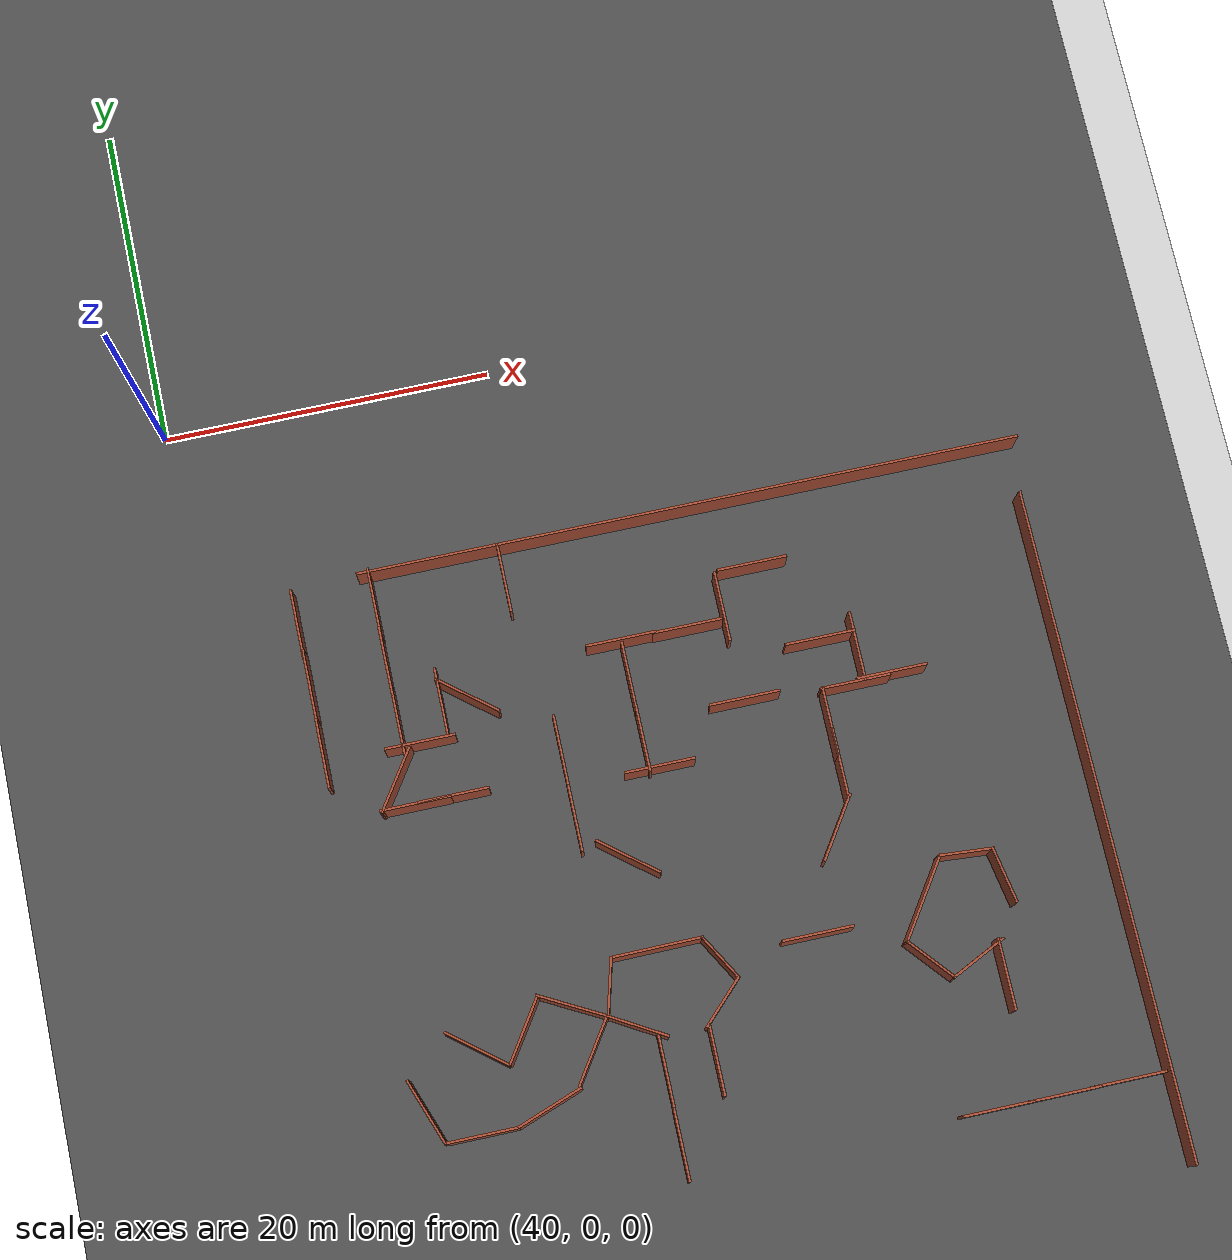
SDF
<sdf version="1.6">
 <world name="default">
  <model name="ground_plane">
   <static>1</static>
   <link name="link">
    <collision name="collision">
     <geometry><plane><normal>0 0 1</normal><size>200 200</size></plane></geometry>
     <surface><friction><ode><mu>100</mu><mu2>50</mu2></ode></friction></surface>
    </collision>
    <visual name="visual">
     <cast_shadows>0</cast_shadows>
     <geometry><plane><normal>0 0 1</normal><size>200 200</size></plane></geometry>
     <material>
      <script><uri>file://media/materials/scripts/gazebo.material</uri><name>Gazebo/Grey</name></script>
     </material>
    </visual>
   </link>
  </model>
  <model name="asphalt_plane">
   <static>1</static>
   <link name="link">
    <collision name="collision"><geometry><box><size>200 200 0.1</size></box></geometry></collision>
    <visual name="visual">
     <cast_shadows>0</cast_shadows>
     <geometry><box><size>200 200 0.1</size></box></geometry>
     <material>
      <script>
       <uri>model://asphalt_plane/materials/scripts</uri>
       <uri>model://asphalt_plane/materials/textures</uri>
       <name>vrc/asphalt</name>
      </script>
     </material>
    </visual>
   </link>
  </model>
  <model name="room1">
   <pose>62.9469 -39.1804 0 0 -0 0</pose>
   <link name="Wall_11">
    <collision name="Wall_11_Collision">
     <geometry><box><size>3.25 0.15 2.5</size></box></geometry>
     <pose>0 0 1.25 0 -0 0</pose>
    </collision>
    <visual name="Wall_11_Visual">
     <pose>0 0 1.25 0 -0 0</pose>
     <geometry><box><size>3.25 0.15 2.5</size></box></geometry>
     <material>
      <script><uri>file://media/materials/scripts/gazebo.material</uri><name>Gazebo/Bricks</name></script>
      <ambient>1 1 1 1</ambient>
     </material>
    </visual>
    <pose>3.12132 1.19483 0 0 0 -1.0472</pose>
   </link>
   <link name="Wall_12">
    <collision name="Wall_12_Collision">
     <geometry><box><size>3.5 0.15 2.5</size></box></geometry>
     <pose>0 0 1.25 0 -0 0</pose>
    </collision>
    <visual name="Wall_12_Visual">
     <pose>0 0 1.25 0 -0 0</pose>
     <geometry><box><size>3.5 0.15 2.5</size></box></geometry>
     <material>
      <script><uri>file://media/materials/scripts/gazebo.material</uri><name>Gazebo/Bricks</name></script>
      <ambient>1 1 1 1</ambient>
     </material>
    </visual>
    <pose>2.71192 -1.33192 0 0 0 -2.35619</pose>
   </link>
   <link name="Wall_7">
    <collision name="Wall_7_Collision">
     <geometry><box><size>5.52935 0.15 2.5</size></box></geometry>
     <pose>0 0 1.25 0 -0 0</pose>
    </collision>
    <visual name="Wall_7_Visual">
     <pose>0 0 1.25 0 -0 0</pose>
     <geometry><box><size>5.52935 0.15 2.5</size></box></geometry>
     <material>
      <script><uri>file://media/materials/scripts/gazebo.material</uri><name>Gazebo/Bricks</name></script>
      <ambient>1 1 1 1</ambient>
     </material>
    </visual>
    <pose>-0.343285 2.51793 0 0 0 -3.13444</pose>
   </link>
   <link name="Wall_8">
    <collision name="Wall_8_Collision">
     <geometry><box><size>3.5 0.15 2.5</size></box></geometry>
     <pose>0 0 1.25 0 -0 0</pose>
    </collision>
    <visual name="Wall_8_Visual">
     <pose>0 0 1.25 0 -0 0</pose>
     <geometry><box><size>3.5 0.15 2.5</size></box></geometry>
     <material>
      <script><uri>file://media/materials/scripts/gazebo.material</uri><name>Gazebo/Bricks</name></script>
      <ambient>1 1 1 1</ambient>
     </material>
    </visual>
    <pose>-3.46641 0.880761 0 0 0 -1.8326</pose>
   </link>
   <link name="Wall_9">
    <collision name="Wall_9_Collision">
     <geometry><box><size>3.75 0.15 2.5</size></box></geometry>
     <pose>0 0 1.25 0 -0 0</pose>
    </collision>
    <visual name="Wall_9_Visual">
     <pose>0 0 1.25 0 -0 0</pose>
     <geometry><box><size>3.75 0.15 2.5</size></box></geometry>
     <material>
      <script><uri>file://media/materials/scripts/gazebo.material</uri><name>Gazebo/Bricks</name></script>
      <ambient>1 1 1 1</ambient>
     </material>
    </visual>
    <pose>-2.34109 -1.63716 0 0 0 -0.523599</pose>
   </link>
   <static>1</static>
  </model>
  <model name="worlds_2">
   <pose>57.0992 -38.867 0 0 -0 1.08023</pose>
   <link name="Wall_0">
    <collision name="Wall_0_Collision">
     <geometry><box><size>4.25 0.15 2.5</size></box></geometry>
     <pose>0 0 1.25 0 -0 0</pose>
    </collision>
    <visual name="Wall_0_Visual">
     <pose>0 0 1.25 0 -0 0</pose>
     <geometry><box><size>4.25 0.15 2.5</size></box></geometry>
     <material>
      <script><uri>file://media/materials/scripts/gazebo.material</uri><name>Gazebo/Bricks</name></script>
      <ambient>1 1 1 1</ambient>
     </material>
    </visual>
    <pose>0 -0 0 0 -0 1.5708</pose>
   </link>
   <static>1</static>
  </model>
  <model name="worlds_1_clone">
   <pose>61.6345 -43.6539 0 0 -0 0</pose>
   <link name="Wall_0">
    <collision name="Wall_0_Collision">
     <geometry><box><size>4.25 0.15 2.5</size></box></geometry>
     <pose>0 0 1.25 0 -0 0</pose>
    </collision>
    <visual name="Wall_0_Visual">
     <pose>0 0 1.25 0 -0 0</pose>
     <geometry><box><size>4.25 0.15 2.5</size></box></geometry>
     <material>
      <script><uri>file://media/materials/scripts/gazebo.material</uri><name>Gazebo/Bricks</name></script>
      <ambient>1 1 1 1</ambient>
     </material>
    </visual>
    <pose>0 -0 0 0 -0 1.5708</pose>
   </link>
   <static>1</static>
  </model>
  <model name="worlds_1_clone_0">
   <pose>61.6134 -47.8914 0 0 -0 0</pose>
   <link name="Wall_0">
    <collision name="Wall_0_Collision">
     <geometry><box><size>4.25 0.15 2.5</size></box></geometry>
     <pose>0 0 1.25 0 -0 0</pose>
    </collision>
    <visual name="Wall_0_Visual">
     <pose>0 0 1.25 0 -0 0</pose>
     <geometry><box><size>4.25 0.15 2.5</size></box></geometry>
     <material>
      <script><uri>file://media/materials/scripts/gazebo.material</uri><name>Gazebo/Bricks</name></script>
      <ambient>1 1 1 1</ambient>
     </material>
    </visual>
    <pose>0 -0 0 0 -0 1.5708</pose>
   </link>
   <static>1</static>
  </model>
  <model name="worlds_1_clone_0_clone_clone_0">
   <pose>71.8838 -37.8494 0 0 0 -1.57092</pose>
   <link name="Wall_0">
    <collision name="Wall_0_Collision">
     <geometry><box><size>4.25 0.15 2.5</size></box></geometry>
     <pose>0 0 1.25 0 -0 0</pose>
    </collision>
    <visual name="Wall_0_Visual">
     <pose>0 0 1.25 0 -0 0</pose>
     <geometry><box><size>4.25 0.15 2.5</size></box></geometry>
     <material>
      <script><uri>file://media/materials/scripts/gazebo.material</uri><name>Gazebo/Bricks</name></script>
      <ambient>1 1 1 1</ambient>
     </material>
    </visual>
    <pose>0 -0 0 0 -0 1.5708</pose>
   </link>
   <static>1</static>
  </model>
  <model name="worlds_1_clone_1_clone_7_clone_clone">
   <pose>54.1633 -39.674 0 0 0 -0.589381</pose>
   <link name="Wall_0">
    <collision name="Wall_0_Collision">
     <geometry><box><size>4.25 0.15 2.5</size></box></geometry>
     <pose>0 0 1.25 0 -0 0</pose>
    </collision>
    <visual name="Wall_0_Visual">
     <pose>0 0 1.25 0 -0 0</pose>
     <geometry><box><size>4.25 0.15 2.5</size></box></geometry>
     <material>
      <script><uri>file://media/materials/scripts/gazebo.material</uri><name>Gazebo/Bricks</name></script>
      <ambient>1 1 1 1</ambient>
     </material>
    </visual>
    <pose>0 -0 0 0 -0 1.5708</pose>
   </link>
   <static>1</static>
  </model>
  <model name="worlds_1_clone_1_clone_7_clone_clone_clone">
   <pose>57.7678 -41.7145 0 0 0 -0.589381</pose>
   <link name="Wall_0">
    <collision name="Wall_0_Collision">
     <geometry><box><size>4.25 0.15 2.5</size></box></geometry>
     <pose>0 0 1.25 0 -0 0</pose>
    </collision>
    <visual name="Wall_0_Visual">
     <pose>0 0 1.25 0 -0 0</pose>
     <geometry><box><size>4.25 0.15 2.5</size></box></geometry>
     <material>
      <script><uri>file://media/materials/scripts/gazebo.material</uri><name>Gazebo/Bricks</name></script>
      <ambient>1 1 1 1</ambient>
     </material>
    </visual>
    <pose>0 -0 0 0 -0 1.5708</pose>
   </link>
   <static>1</static>
  </model>
  <model name="worlds_1_clone_0_clone_clone_0_clone_clone_0_clone_clone">
   <pose>47.8022 -43.0147 0 0 0 -2.78777</pose>
   <link name="Wall_0">
    <collision name="Wall_0_Collision">
     <geometry><box><size>4.25 0.15 2.5</size></box></geometry>
     <pose>0 0 1.25 0 -0 0</pose>
    </collision>
    <visual name="Wall_0_Visual">
     <pose>0 0 1.25 0 -0 0</pose>
     <geometry><box><size>4.25 0.15 2.5</size></box></geometry>
     <material>
      <script><uri>file://media/materials/scripts/gazebo.material</uri><name>Gazebo/Bricks</name></script>
      <ambient>1 1 1 1</ambient>
     </material>
    </visual>
    <pose>0 -0 0 0 -0 1.5708</pose>
   </link>
   <static>1</static>
  </model>
  <model name="worlds_1_clone_0_clone_clone_0_clone_clone_0_clone_clone_0">
   <pose>54.7413 -44.255 0 0 0 -1.22347</pose>
   <link name="Wall_0">
    <collision name="Wall_0_Collision">
     <geometry><box><size>4.25 0.15 2.5</size></box></geometry>
     <pose>0 0 1.25 0 -0 0</pose>
    </collision>
    <visual name="Wall_0_Visual">
     <pose>0 0 1.25 0 -0 0</pose>
     <geometry><box><size>4.25 0.15 2.5</size></box></geometry>
     <material>
      <script><uri>file://media/materials/scripts/gazebo.material</uri><name>Gazebo/Bricks</name></script>
      <ambient>1 1 1 1</ambient>
     </material>
    </visual>
    <pose>0 -0 0 0 -0 1.5708</pose>
   </link>
   <static>1</static>
  </model>
  <model name="worlds_1_clone_0_clone_clone_0_clone_clone_0_clone_clone_clone">
   <pose>50.6997 -44.9664 0 0 0 -1.57092</pose>
   <link name="Wall_0">
    <collision name="Wall_0_Collision">
     <geometry><box><size>4.25 0.15 2.5</size></box></geometry>
     <pose>0 0 1.25 0 -0 0</pose>
    </collision>
    <visual name="Wall_0_Visual">
     <pose>0 0 1.25 0 -0 0</pose>
     <geometry><box><size>4.25 0.15 2.5</size></box></geometry>
     <material>
      <script><uri>file://media/materials/scripts/gazebo.material</uri><name>Gazebo/Bricks</name></script>
      <ambient>1 1 1 1</ambient>
     </material>
    </visual>
    <pose>0 -0 0 0 -0 1.5708</pose>
   </link>
   <static>1</static>
  </model>
  <model name="worlds_1_clone_1_clone_7_clone_clone_0">
   <pose>51.3459 -40.1271 0 0 -0 0.90029</pose>
   <link name="Wall_0">
    <collision name="Wall_0_Collision">
     <geometry><box><size>4.25 0.15 2.5</size></box></geometry>
     <pose>0 0 1.25 0 -0 0</pose>
    </collision>
    <visual name="Wall_0_Visual">
     <pose>0 0 1.25 0 -0 0</pose>
     <geometry><box><size>4.25 0.15 2.5</size></box></geometry>
     <material>
      <script><uri>file://media/materials/scripts/gazebo.material</uri><name>Gazebo/Bricks</name></script>
      <ambient>1 1 1 1</ambient>
     </material>
    </visual>
    <pose>0 -0 0 0 -0 1.5708</pose>
   </link>
   <static>1</static>
  </model>
  <model name="worlds_1_clone_clone">
   <pose>64.6066 -43.6549 0 0 -0 0</pose>
   <link name="Wall_0">
    <collision name="Wall_0_Collision">
     <geometry><box><size>4.25 0.15 2.5</size></box></geometry>
     <pose>0 0 1.25 0 -0 0</pose>
    </collision>
    <visual name="Wall_0_Visual">
     <pose>0 0 1.25 0 -0 0</pose>
     <geometry><box><size>4.25 0.15 2.5</size></box></geometry>
     <material>
      <script><uri>file://media/materials/scripts/gazebo.material</uri><name>Gazebo/Bricks</name></script>
      <ambient>1 1 1 1</ambient>
     </material>
    </visual>
    <pose>0 -0 0 0 -0 1.5708</pose>
   </link>
   <static>1</static>
  </model>
  <model name="longwall_clone_clone">
   <pose>70.133 -11.2921 0 0 -0 0</pose>
   <link name="Wall_0">
    <collision name="Wall_0_Collision">
     <geometry><box><size>40.5 0.15 2.5</size></box></geometry>
     <pose>0 0 1.25 0 -0 0</pose>
    </collision>
    <visual name="Wall_0_Visual">
     <pose>0 0 1.25 0 -0 0</pose>
     <geometry><box><size>40.5 0.15 2.5</size></box></geometry>
     <material>
      <script><uri>file://media/materials/scripts/gazebo.material</uri><name>Gazebo/Bricks</name></script>
      <ambient>1 1 1 1</ambient>
     </material>
    </visual>
    <pose>1e-06 0 0 0 -0 0</pose>
   </link>
   <static>1</static>
  </model>
  <model name="longwall_clone_clone_3_clone_2">
   <pose>89.7563 -34.9133 0 0 0 -1.56602</pose>
   <link name="Wall_0">
    <collision name="Wall_0_Collision">
     <geometry><box><size>40.5 0.15 2.5</size></box></geometry>
     <pose>0 0 1.25 0 -0 0</pose>
    </collision>
    <visual name="Wall_0_Visual">
     <pose>0 0 1.25 0 -0 0</pose>
     <geometry><box><size>40.5 0.15 2.5</size></box></geometry>
     <material>
      <script><uri>file://media/materials/scripts/gazebo.material</uri><name>Gazebo/Bricks</name></script>
      <ambient>1 1 1 1</ambient>
     </material>
    </visual>
    <pose>1e-06 0 0 0 -0 0</pose>
   </link>
   <static>1</static>
  </model>
  <model name="worlds_1_clone_0_clone_clone_0_clone_clone_clone_1">
   <pose>79.6674 -49.7138 0 0 0 -1.57092</pose>
   <link name="Wall_0">
    <collision name="Wall_0_Collision">
     <geometry><box><size>4.25 0.15 2.5</size></box></geometry>
     <pose>0 0 1.25 0 -0 0</pose>
    </collision>
    <visual name="Wall_0_Visual">
     <pose>0 0 1.25 0 -0 0</pose>
     <geometry><box><size>4.25 0.15 2.5</size></box></geometry>
     <material>
      <script><uri>file://media/materials/scripts/gazebo.material</uri><name>Gazebo/Bricks</name></script>
      <ambient>1 1 1 1</ambient>
     </material>
    </visual>
    <pose>0 -0 0 0 -0 1.5708</pose>
   </link>
   <static>1</static>
  </model>
  <model name="worlds_1_clone_0_clone_clone_0_clone_clone_clone_2">
   <pose>83.5636 -49.7075 0 0 0 -1.57092</pose>
   <link name="Wall_0">
    <collision name="Wall_0_Collision">
     <geometry><box><size>4.25 0.15 2.5</size></box></geometry>
     <pose>0 0 1.25 0 -0 0</pose>
    </collision>
    <visual name="Wall_0_Visual">
     <pose>0 0 1.25 0 -0 0</pose>
     <geometry><box><size>4.25 0.15 2.5</size></box></geometry>
     <material>
      <script><uri>file://media/materials/scripts/gazebo.material</uri><name>Gazebo/Bricks</name></script>
      <ambient>1 1 1 1</ambient>
     </material>
    </visual>
    <pose>0 -0 0 0 -0 1.5708</pose>
   </link>
   <static>1</static>
  </model>
  <model name="worlds_1_clone_0_clone_clone_0_clone_clone_clone_3">
   <pose>87.4411 -49.6799 0 0 0 -1.57092</pose>
   <link name="Wall_0">
    <collision name="Wall_0_Collision">
     <geometry><box><size>4.25 0.15 2.5</size></box></geometry>
     <pose>0 0 1.25 0 -0 0</pose>
    </collision>
    <visual name="Wall_0_Visual">
     <pose>0 0 1.25 0 -0 0</pose>
     <geometry><box><size>4.25 0.15 2.5</size></box></geometry>
     <material>
      <script><uri>file://media/materials/scripts/gazebo.material</uri><name>Gazebo/Bricks</name></script>
      <ambient>1 1 1 1</ambient>
     </material>
    </visual>
    <pose>0 -0 0 0 -0 1.5708</pose>
   </link>
   <static>1</static>
  </model>
  <model name="worlds_1_clone_1_clone_clone_0_clone_3">
   <pose>45.9096 -21.4531 0 0 -0 0</pose>
   <link name="Wall_0">
    <collision name="Wall_0_Collision">
     <geometry><box><size>4.25 0.15 2.5</size></box></geometry>
     <pose>0 0 1.25 0 -0 0</pose>
    </collision>
    <visual name="Wall_0_Visual">
     <pose>0 0 1.25 0 -0 0</pose>
     <geometry><box><size>4.25 0.15 2.5</size></box></geometry>
     <material>
      <script><uri>file://media/materials/scripts/gazebo.material</uri><name>Gazebo/Bricks</name></script>
      <ambient>1 1 1 1</ambient>
     </material>
    </visual>
    <pose>0 -0 0 0 -0 1.5708</pose>
   </link>
   <static>1</static>
  </model>
  <model name="worlds_1_clone_1_clone_clone_0_clone_5">
   <pose>45.9289 -17.2509 0 0 -0 0</pose>
   <link name="Wall_0">
    <collision name="Wall_0_Collision">
     <geometry><box><size>4.25 0.15 2.5</size></box></geometry>
     <pose>0 0 1.25 0 -0 0</pose>
    </collision>
    <visual name="Wall_0_Visual">
     <pose>0 0 1.25 0 -0 0</pose>
     <geometry><box><size>4.25 0.15 2.5</size></box></geometry>
     <material>
      <script><uri>file://media/materials/scripts/gazebo.material</uri><name>Gazebo/Bricks</name></script>
      <ambient>1 1 1 1</ambient>
     </material>
    </visual>
    <pose>0 -0 0 0 -0 1.5708</pose>
   </link>
   <static>1</static>
  </model>
  <model name="worlds_1_clone_1_clone_clone_0_clone_6">
   <pose>45.8934 -13.5337 0 0 -0 0</pose>
   <link name="Wall_0">
    <collision name="Wall_0_Collision">
     <geometry><box><size>4.25 0.15 2.5</size></box></geometry>
     <pose>0 0 1.25 0 -0 0</pose>
    </collision>
    <visual name="Wall_0_Visual">
     <pose>0 0 1.25 0 -0 0</pose>
     <geometry><box><size>4.25 0.15 2.5</size></box></geometry>
     <material>
      <script><uri>file://media/materials/scripts/gazebo.material</uri><name>Gazebo/Bricks</name></script>
      <ambient>1 1 1 1</ambient>
     </material>
    </visual>
    <pose>0 -0 0 0 -0 1.5708</pose>
   </link>
   <static>1</static>
  </model>
  <model name="room1_clone_2">
   <pose>80.5801 -38.3089 0 0 -0 0.969844</pose>
   <link name="Wall_11">
    <collision name="Wall_11_Collision">
     <geometry><box><size>3.25 0.15 2.5</size></box></geometry>
     <pose>0 0 1.25 0 -0 0</pose>
    </collision>
    <visual name="Wall_11_Visual">
     <pose>0 0 1.25 0 -0 0</pose>
     <geometry><box><size>3.25 0.15 2.5</size></box></geometry>
     <material>
      <script><uri>file://media/materials/scripts/gazebo.material</uri><name>Gazebo/Bricks</name></script>
      <ambient>1 1 1 1</ambient>
     </material>
    </visual>
    <pose>3.12132 1.19483 0 0 0 -1.0472</pose>
   </link>
   <link name="Wall_12">
    <collision name="Wall_12_Collision">
     <geometry><box><size>3.5 0.15 2.5</size></box></geometry>
     <pose>0 0 1.25 0 -0 0</pose>
    </collision>
    <visual name="Wall_12_Visual">
     <pose>0 0 1.25 0 -0 0</pose>
     <geometry><box><size>3.5 0.15 2.5</size></box></geometry>
     <material>
      <script><uri>file://media/materials/scripts/gazebo.material</uri><name>Gazebo/Bricks</name></script>
      <ambient>1 1 1 1</ambient>
     </material>
    </visual>
    <pose>2.71192 -1.33192 0 0 0 -2.35619</pose>
   </link>
   <link name="Wall_7">
    <collision name="Wall_7_Collision">
     <geometry><box><size>5.52935 0.15 2.5</size></box></geometry>
     <pose>0 0 1.25 0 -0 0</pose>
    </collision>
    <visual name="Wall_7_Visual">
     <pose>0 0 1.25 0 -0 0</pose>
     <geometry><box><size>5.52935 0.15 2.5</size></box></geometry>
     <material>
      <script><uri>file://media/materials/scripts/gazebo.material</uri><name>Gazebo/Bricks</name></script>
      <ambient>1 1 1 1</ambient>
     </material>
    </visual>
    <pose>-0.343285 2.51793 0 0 0 -3.13444</pose>
   </link>
   <link name="Wall_8">
    <collision name="Wall_8_Collision">
     <geometry><box><size>3.5 0.15 2.5</size></box></geometry>
     <pose>0 0 1.25 0 -0 0</pose>
    </collision>
    <visual name="Wall_8_Visual">
     <pose>0 0 1.25 0 -0 0</pose>
     <geometry><box><size>3.5 0.15 2.5</size></box></geometry>
     <material>
      <script><uri>file://media/materials/scripts/gazebo.material</uri><name>Gazebo/Bricks</name></script>
      <ambient>1 1 1 1</ambient>
     </material>
    </visual>
    <pose>-3.46641 0.880761 0 0 0 -1.8326</pose>
   </link>
   <link name="Wall_9">
    <collision name="Wall_9_Collision">
     <geometry><box><size>3.75 0.15 2.5</size></box></geometry>
     <pose>0 0 1.25 0 -0 0</pose>
    </collision>
    <visual name="Wall_9_Visual">
     <pose>0 0 1.25 0 -0 0</pose>
     <geometry><box><size>3.75 0.15 2.5</size></box></geometry>
     <material>
      <script><uri>file://media/materials/scripts/gazebo.material</uri><name>Gazebo/Bricks</name></script>
      <ambient>1 1 1 1</ambient>
     </material>
    </visual>
    <pose>-2.34109 -1.63716 0 0 0 -0.523599</pose>
   </link>
   <static>1</static>
  </model>
  <model name="worlds_1_clone_clone_clone">
   <pose>81.9554 -42.414 0 0 -0 0</pose>
   <link name="Wall_0">
    <collision name="Wall_0_Collision">
     <geometry><box><size>4.25 0.15 2.5</size></box></geometry>
     <pose>0 0 1.25 0 -0 0</pose>
    </collision>
    <visual name="Wall_0_Visual">
     <pose>0 0 1.25 0 -0 0</pose>
     <geometry><box><size>4.25 0.15 2.5</size></box></geometry>
     <material>
      <script><uri>file://media/materials/scripts/gazebo.material</uri><name>Gazebo/Bricks</name></script>
      <ambient>1 1 1 1</ambient>
     </material>
    </visual>
    <pose>0 -0 0 0 -0 1.5708</pose>
   </link>
   <static>1</static>
  </model>
  <model name="worlds_1_clone_clone_0">
   <pose>59.5845 -28.2096 0 0 -0 0</pose>
   <link name="Wall_0">
    <collision name="Wall_0_Collision">
     <geometry><box><size>4.25 0.15 2.5</size></box></geometry>
     <pose>0 0 1.25 0 -0 0</pose>
    </collision>
    <visual name="Wall_0_Visual">
     <pose>0 0 1.25 0 -0 0</pose>
     <geometry><box><size>4.25 0.15 2.5</size></box></geometry>
     <material>
      <script><uri>file://media/materials/scripts/gazebo.material</uri><name>Gazebo/Bricks</name></script>
      <ambient>1 1 1 1</ambient>
     </material>
    </visual>
    <pose>0 -0 0 0 -0 1.5708</pose>
   </link>
   <static>1</static>
  </model>
  <model name="worlds_1_clone_clone_1">
   <pose>75.4189 -28.4288 0 0 -0 0</pose>
   <link name="Wall_0">
    <collision name="Wall_0_Collision">
     <geometry><box><size>4.25 0.15 2.5</size></box></geometry>
     <pose>0 0 1.25 0 -0 0</pose>
    </collision>
    <visual name="Wall_0_Visual">
     <pose>0 0 1.25 0 -0 0</pose>
     <geometry><box><size>4.25 0.15 2.5</size></box></geometry>
     <material>
      <script><uri>file://media/materials/scripts/gazebo.material</uri><name>Gazebo/Bricks</name></script>
      <ambient>1 1 1 1</ambient>
     </material>
    </visual>
    <pose>0 -0 0 0 -0 1.5708</pose>
   </link>
   <static>1</static>
  </model>
  <model name="worlds_1_clone_clone_2">
   <pose>75.4102 -25.8949 0 0 -0 0</pose>
   <link name="Wall_0">
    <collision name="Wall_0_Collision">
     <geometry><box><size>4.25 0.15 2.5</size></box></geometry>
     <pose>0 0 1.25 0 -0 0</pose>
    </collision>
    <visual name="Wall_0_Visual">
     <pose>0 0 1.25 0 -0 0</pose>
     <geometry><box><size>4.25 0.15 2.5</size></box></geometry>
     <material>
      <script><uri>file://media/materials/scripts/gazebo.material</uri><name>Gazebo/Bricks</name></script>
      <ambient>1 1 1 1</ambient>
     </material>
    </visual>
    <pose>0 -0 0 0 -0 1.5708</pose>
   </link>
   <static>1</static>
  </model>
  <model name="worlds_1_clone_0_clone_clone_0_clone_0">
   <pose>77.3992 -23.8784 0 0 0 -1.57092</pose>
   <link name="Wall_0">
    <collision name="Wall_0_Collision">
     <geometry><box><size>4.25 0.15 2.5</size></box></geometry>
     <pose>0 0 1.25 0 -0 0</pose>
    </collision>
    <visual name="Wall_0_Visual">
     <pose>0 0 1.25 0 -0 0</pose>
     <geometry><box><size>4.25 0.15 2.5</size></box></geometry>
     <material>
      <script><uri>file://media/materials/scripts/gazebo.material</uri><name>Gazebo/Bricks</name></script>
      <ambient>1 1 1 1</ambient>
     </material>
    </visual>
    <pose>0 -0 0 0 -0 1.5708</pose>
   </link>
   <static>1</static>
  </model>
  <model name="worlds_1_clone_0_clone_clone_0_clone_1">
   <pose>79.6307 -23.7333 0 0 0 -1.57092</pose>
   <link name="Wall_0">
    <collision name="Wall_0_Collision">
     <geometry><box><size>4.25 0.15 2.5</size></box></geometry>
     <pose>0 0 1.25 0 -0 0</pose>
    </collision>
    <visual name="Wall_0_Visual">
     <pose>0 0 1.25 0 -0 0</pose>
     <geometry><box><size>4.25 0.15 2.5</size></box></geometry>
     <material>
      <script><uri>file://media/materials/scripts/gazebo.material</uri><name>Gazebo/Bricks</name></script>
      <ambient>1 1 1 1</ambient>
     </material>
    </visual>
    <pose>0 -0 0 0 -0 1.5708</pose>
   </link>
   <static>1</static>
  </model>
  <model name="worlds_1_clone_0_clone_clone_0_clone_2">
   <pose>65.0632 -26.3352 0 0 0 -1.57092</pose>
   <link name="Wall_0">
    <collision name="Wall_0_Collision">
     <geometry><box><size>4.25 0.15 2.5</size></box></geometry>
     <pose>0 0 1.25 0 -0 0</pose>
    </collision>
    <visual name="Wall_0_Visual">
     <pose>0 0 1.25 0 -0 0</pose>
     <geometry><box><size>4.25 0.15 2.5</size></box></geometry>
     <material>
      <script><uri>file://media/materials/scripts/gazebo.material</uri><name>Gazebo/Bricks</name></script>
      <ambient>1 1 1 1</ambient>
     </material>
    </visual>
    <pose>0 -0 0 0 -0 1.5708</pose>
   </link>
   <static>1</static>
  </model>
  <model name="worlds_1_clone_0_clone_clone_0_clone_3">
   <pose>70.8072 -23.4621 0 0 0 -1.57092</pose>
   <link name="Wall_0">
    <collision name="Wall_0_Collision">
     <geometry><box><size>4.25 0.15 2.5</size></box></geometry>
     <pose>0 0 1.25 0 -0 0</pose>
    </collision>
    <visual name="Wall_0_Visual">
     <pose>0 0 1.25 0 -0 0</pose>
     <geometry><box><size>4.25 0.15 2.5</size></box></geometry>
     <material>
      <script><uri>file://media/materials/scripts/gazebo.material</uri><name>Gazebo/Bricks</name></script>
      <ambient>1 1 1 1</ambient>
     </material>
    </visual>
    <pose>0 -0 0 0 -0 1.5708</pose>
   </link>
   <static>1</static>
  </model>
  <model name="worlds_1_clone_0_clone_clone_0_clone_4">
   <pose>64.4358 -18.4576 0 0 0 -1.57092</pose>
   <link name="Wall_0">
    <collision name="Wall_0_Collision">
     <geometry><box><size>4.25 0.15 2.5</size></box></geometry>
     <pose>0 0 1.25 0 -0 0</pose>
    </collision>
    <visual name="Wall_0_Visual">
     <pose>0 0 1.25 0 -0 0</pose>
     <geometry><box><size>4.25 0.15 2.5</size></box></geometry>
     <material>
      <script><uri>file://media/materials/scripts/gazebo.material</uri><name>Gazebo/Bricks</name></script>
      <ambient>1 1 1 1</ambient>
     </material>
    </visual>
    <pose>0 -0 0 0 -0 1.5708</pose>
   </link>
   <static>1</static>
  </model>
  <model name="worlds_1_clone_clone_0_clone">
   <pose>64.4379 -20.7736 0 0 -0 0</pose>
   <link name="Wall_0">
    <collision name="Wall_0_Collision">
     <geometry><box><size>4.25 0.15 2.5</size></box></geometry>
     <pose>0 0 1.25 0 -0 0</pose>
    </collision>
    <visual name="Wall_0_Visual">
     <pose>0 0 1.25 0 -0 0</pose>
     <geometry><box><size>4.25 0.15 2.5</size></box></geometry>
     <material>
      <script><uri>file://media/materials/scripts/gazebo.material</uri><name>Gazebo/Bricks</name></script>
      <ambient>1 1 1 1</ambient>
     </material>
    </visual>
    <pose>0 -0 0 0 -0 1.5708</pose>
   </link>
   <static>1</static>
  </model>
  <model name="worlds_1_clone_clone_0_clone_0">
   <pose>58.4374 -13.3357 0 0 -0 0</pose>
   <link name="Wall_0">
    <collision name="Wall_0_Collision">
     <geometry><box><size>4.25 0.15 2.5</size></box></geometry>
     <pose>0 0 1.25 0 -0 0</pose>
    </collision>
    <visual name="Wall_0_Visual">
     <pose>0 0 1.25 0 -0 0</pose>
     <geometry><box><size>4.25 0.15 2.5</size></box></geometry>
     <material>
      <script><uri>file://media/materials/scripts/gazebo.material</uri><name>Gazebo/Bricks</name></script>
      <ambient>1 1 1 1</ambient>
     </material>
    </visual>
    <pose>0 -0 0 0 -0 1.5708</pose>
   </link>
   <static>1</static>
  </model>
  <model name="worlds_1_clone_clone_0_clone_1">
   <pose>59.5905 -24.2097 0 0 -0 0</pose>
   <link name="Wall_0">
    <collision name="Wall_0_Collision">
     <geometry><box><size>4.25 0.15 2.5</size></box></geometry>
     <pose>0 0 1.25 0 -0 0</pose>
    </collision>
    <visual name="Wall_0_Visual">
     <pose>0 0 1.25 0 -0 0</pose>
     <geometry><box><size>4.25 0.15 2.5</size></box></geometry>
     <material>
      <script><uri>file://media/materials/scripts/gazebo.material</uri><name>Gazebo/Bricks</name></script>
      <ambient>1 1 1 1</ambient>
     </material>
    </visual>
    <pose>0 -0 0 0 -0 1.5708</pose>
   </link>
   <static>1</static>
  </model>
  <model name="worlds_1_clone_0_clone_clone_0_clone_2_clone">
   <pose>51.6197 -22 0 0 0 -1.57092</pose>
   <link name="Wall_0">
    <collision name="Wall_0_Collision">
     <geometry><box><size>4.25 0.15 2.5</size></box></geometry>
     <pose>0 0 1.25 0 -0 0</pose>
    </collision>
    <visual name="Wall_0_Visual">
     <pose>0 0 1.25 0 -0 0</pose>
     <geometry><box><size>4.25 0.15 2.5</size></box></geometry>
     <material>
      <script><uri>file://media/materials/scripts/gazebo.material</uri><name>Gazebo/Bricks</name></script>
      <ambient>1 1 1 1</ambient>
     </material>
    </visual>
    <pose>0 -0 0 0 -0 1.5708</pose>
   </link>
   <static>1</static>
  </model>
  <model name="worlds_1_clone_clone_0_clone_clone">
   <pose>64.445 -24.4791 0 0 -0 0</pose>
   <link name="Wall_0">
    <collision name="Wall_0_Collision">
     <geometry><box><size>4.25 0.15 2.5</size></box></geometry>
     <pose>0 0 1.25 0 -0 0</pose>
    </collision>
    <visual name="Wall_0_Visual">
     <pose>0 0 1.25 0 -0 0</pose>
     <geometry><box><size>4.25 0.15 2.5</size></box></geometry>
     <material>
      <script><uri>file://media/materials/scripts/gazebo.material</uri><name>Gazebo/Bricks</name></script>
      <ambient>1 1 1 1</ambient>
     </material>
    </visual>
    <pose>0 -0 0 0 -0 1.5708</pose>
   </link>
   <static>1</static>
  </model>
  <model name="worlds_1_clone_0_clone_clone_0_clone_3_clone">
   <pose>68.467 -18.5142 0 0 0 -1.57092</pose>
   <link name="Wall_0">
    <collision name="Wall_0_Collision">
     <geometry><box><size>4.25 0.15 2.5</size></box></geometry>
     <pose>0 0 1.25 0 -0 0</pose>
    </collision>
    <visual name="Wall_0_Visual">
     <pose>0 0 1.25 0 -0 0</pose>
     <geometry><box><size>4.25 0.15 2.5</size></box></geometry>
     <material>
      <script><uri>file://media/materials/scripts/gazebo.material</uri><name>Gazebo/Bricks</name></script>
      <ambient>1 1 1 1</ambient>
     </material>
    </visual>
    <pose>0 -0 0 0 -0 1.5708</pose>
   </link>
   <static>1</static>
  </model>
  <model name="worlds_1_clone_0_clone_clone_0_clone_3_clone_0">
   <pose>73.0187 -15.5975 0 0 0 -1.57092</pose>
   <link name="Wall_0">
    <collision name="Wall_0_Collision">
     <geometry><box><size>4.25 0.15 2.5</size></box></geometry>
     <pose>0 0 1.25 0 -0 0</pose>
    </collision>
    <visual name="Wall_0_Visual">
     <pose>0 0 1.25 0 -0 0</pose>
     <geometry><box><size>4.25 0.15 2.5</size></box></geometry>
     <material>
      <script><uri>file://media/materials/scripts/gazebo.material</uri><name>Gazebo/Bricks</name></script>
      <ambient>1 1 1 1</ambient>
     </material>
    </visual>
    <pose>0 -0 0 0 -0 1.5708</pose>
   </link>
   <static>1</static>
  </model>
  <model name="worlds_1_clone_clone_0_clone_clone_clone">
   <pose>70.7191 -17.783 0 0 -0 0</pose>
   <link name="Wall_0">
    <collision name="Wall_0_Collision">
     <geometry><box><size>4.25 0.15 2.5</size></box></geometry>
     <pose>0 0 1.25 0 -0 0</pose>
    </collision>
    <visual name="Wall_0_Visual">
     <pose>0 0 1.25 0 -0 0</pose>
     <geometry><box><size>4.25 0.15 2.5</size></box></geometry>
     <material>
      <script><uri>file://media/materials/scripts/gazebo.material</uri><name>Gazebo/Bricks</name></script>
      <ambient>1 1 1 1</ambient>
     </material>
    </visual>
    <pose>0 -0 0 0 -0 1.5708</pose>
   </link>
   <static>1</static>
  </model>
  <model name="worlds_1_clone_clone_0_clone_clone_clone_0">
   <pose>77.9943 -21.8284 0 0 -0 0</pose>
   <link name="Wall_0">
    <collision name="Wall_0_Collision">
     <geometry><box><size>4.25 0.15 2.5</size></box></geometry>
     <pose>0 0 1.25 0 -0 0</pose>
    </collision>
    <visual name="Wall_0_Visual">
     <pose>0 0 1.25 0 -0 0</pose>
     <geometry><box><size>4.25 0.15 2.5</size></box></geometry>
     <material>
      <script><uri>file://media/materials/scripts/gazebo.material</uri><name>Gazebo/Bricks</name></script>
      <ambient>1 1 1 1</ambient>
     </material>
    </visual>
    <pose>0 -0 0 0 -0 1.5708</pose>
   </link>
   <static>1</static>
  </model>
  <model name="worlds_1_clone_0_clone_clone_0_clone_3_clone_1">
   <pose>75.9651 -20.8585 0 0 0 -1.57092</pose>
   <link name="Wall_0">
    <collision name="Wall_0_Collision">
     <geometry><box><size>4.25 0.15 2.5</size></box></geometry>
     <pose>0 0 1.25 0 -0 0</pose>
    </collision>
    <visual name="Wall_0_Visual">
     <pose>0 0 1.25 0 -0 0</pose>
     <geometry><box><size>4.25 0.15 2.5</size></box></geometry>
     <material>
      <script><uri>file://media/materials/scripts/gazebo.material</uri><name>Gazebo/Bricks</name></script>
      <ambient>1 1 1 1</ambient>
     </material>
    </visual>
    <pose>0 -0 0 0 -0 1.5708</pose>
   </link>
   <static>1</static>
  </model>
  <model name="worlds_1_clone_1_clone_7_clone_clone_clone_clone">
   <pose>74.3761 -32.0884 0 0 0 -0.589382</pose>
   <link name="Wall_0">
    <collision name="Wall_0_Collision">
     <geometry><box><size>4.25 0.15 2.5</size></box></geometry>
     <pose>0 0 1.25 0 -0 0</pose>
    </collision>
    <visual name="Wall_0_Visual">
     <pose>0 0 1.25 0 -0 0</pose>
     <geometry><box><size>4.25 0.15 2.5</size></box></geometry>
     <material>
      <script><uri>file://media/materials/scripts/gazebo.material</uri><name>Gazebo/Bricks</name></script>
      <ambient>1 1 1 1</ambient>
     </material>
    </visual>
    <pose>0 -0 0 0 -0 1.5708</pose>
   </link>
   <static>1</static>
  </model>
  <model name="worlds_1_clone_1_clone_7_clone_clone_0_clone">
   <pose>62.1187 -31.1658 0 0 -0 0.90029</pose>
   <link name="Wall_0">
    <collision name="Wall_0_Collision">
     <geometry><box><size>4.25 0.15 2.5</size></box></geometry>
     <pose>0 0 1.25 0 -0 0</pose>
    </collision>
    <visual name="Wall_0_Visual">
     <pose>0 0 1.25 0 -0 0</pose>
     <geometry><box><size>4.25 0.15 2.5</size></box></geometry>
     <material>
      <script><uri>file://media/materials/scripts/gazebo.material</uri><name>Gazebo/Bricks</name></script>
      <ambient>1 1 1 1</ambient>
     </material>
    </visual>
    <pose>0 -0 0 0 -0 1.5708</pose>
   </link>
   <static>1</static>
  </model>
  <model name="worlds_1_clone_1_clone_7_clone_clone_0_clone_0">
   <pose>54.8792 -19.8299 0 0 -0 0.90029</pose>
   <link name="Wall_0">
    <collision name="Wall_0_Collision">
     <geometry><box><size>4.25 0.15 2.5</size></box></geometry>
     <pose>0 0 1.25 0 -0 0</pose>
    </collision>
    <visual name="Wall_0_Visual">
     <pose>0 0 1.25 0 -0 0</pose>
     <geometry><box><size>4.25 0.15 2.5</size></box></geometry>
     <material>
      <script><uri>file://media/materials/scripts/gazebo.material</uri><name>Gazebo/Bricks</name></script>
      <ambient>1 1 1 1</ambient>
     </material>
    </visual>
    <pose>0 -0 0 0 -0 1.5708</pose>
   </link>
   <static>1</static>
  </model>
  <model name="worlds_1_clone_1_clone_0_clone">
   <pose>53.3077 -19.9406 0 0 -0 0</pose>
   <link name="Wall_0">
    <collision name="Wall_0_Collision">
     <geometry><box><size>4.25 0.15 2.5</size></box></geometry>
     <pose>0 0 1.25 0 -0 0</pose>
    </collision>
    <visual name="Wall_0_Visual">
     <pose>0 0 1.25 0 -0 0</pose>
     <geometry><box><size>4.25 0.15 2.5</size></box></geometry>
     <material>
      <script><uri>file://media/materials/scripts/gazebo.material</uri><name>Gazebo/Bricks</name></script>
      <ambient>1 1 1 1</ambient>
     </material>
    </visual>
    <pose>0 -0 0 0 -0 1.5708</pose>
   </link>
   <static>1</static>
  </model>
  <model name="worlds_1_clone_1_clone_0_clone_0">
   <pose>50.6047 -13.1994 0 0 -0 0</pose>
   <link name="Wall_0">
    <collision name="Wall_0_Collision">
     <geometry><box><size>4.25 0.15 2.5</size></box></geometry>
     <pose>0 0 1.25 0 -0 0</pose>
    </collision>
    <visual name="Wall_0_Visual">
     <pose>0 0 1.25 0 -0 0</pose>
     <geometry><box><size>4.25 0.15 2.5</size></box></geometry>
     <material>
      <script><uri>file://media/materials/scripts/gazebo.material</uri><name>Gazebo/Bricks</name></script>
      <ambient>1 1 1 1</ambient>
     </material>
    </visual>
    <pose>0 -0 0 0 -0 1.5708</pose>
   </link>
   <static>1</static>
  </model>
  <model name="worlds_1_clone_1_clone_0_clone_1">
   <pose>50.5879 -16.8459 0 0 -0 0</pose>
   <link name="Wall_0">
    <collision name="Wall_0_Collision">
     <geometry><box><size>4.25 0.15 2.5</size></box></geometry>
     <pose>0 0 1.25 0 -0 0</pose>
    </collision>
    <visual name="Wall_0_Visual">
     <pose>0 0 1.25 0 -0 0</pose>
     <geometry><box><size>4.25 0.15 2.5</size></box></geometry>
     <material>
      <script><uri>file://media/materials/scripts/gazebo.material</uri><name>Gazebo/Bricks</name></script>
      <ambient>1 1 1 1</ambient>
     </material>
    </visual>
    <pose>0 -0 0 0 -0 1.5708</pose>
   </link>
   <static>1</static>
  </model>
  <model name="worlds_1_clone_1_clone_0_clone_2">
   <pose>50.6056 -20.4384 0 0 -0 0</pose>
   <link name="Wall_0">
    <collision name="Wall_0_Collision">
     <geometry><box><size>4.25 0.15 2.5</size></box></geometry>
     <pose>0 0 1.25 0 -0 0</pose>
    </collision>
    <visual name="Wall_0_Visual">
     <pose>0 0 1.25 0 -0 0</pose>
     <geometry><box><size>4.25 0.15 2.5</size></box></geometry>
     <material>
      <script><uri>file://media/materials/scripts/gazebo.material</uri><name>Gazebo/Bricks</name></script>
      <ambient>1 1 1 1</ambient>
     </material>
    </visual>
    <pose>0 -0 0 0 -0 1.5708</pose>
   </link>
   <static>1</static>
  </model>
  <model name="worlds_1_clone_1_clone_7_clone_clone_clone_clone_clone">
   <pose>49.8181 -23.9028 0 0 0 -0.589382</pose>
   <link name="Wall_0">
    <collision name="Wall_0_Collision">
     <geometry><box><size>4.25 0.15 2.5</size></box></geometry>
     <pose>0 0 1.25 0 -0 0</pose>
    </collision>
    <visual name="Wall_0_Visual">
     <pose>0 0 1.25 0 -0 0</pose>
     <geometry><box><size>4.25 0.15 2.5</size></box></geometry>
     <material>
      <script><uri>file://media/materials/scripts/gazebo.material</uri><name>Gazebo/Bricks</name></script>
      <ambient>1 1 1 1</ambient>
     </material>
    </visual>
    <pose>0 -0 0 0 -0 1.5708</pose>
   </link>
   <static>1</static>
  </model>
  <model name="worlds_1_clone_0_clone_clone_0_clone_2_clone_0">
   <pose>50.6542 -25.5273 0 0 0 -1.57092</pose>
   <link name="Wall_0">
    <collision name="Wall_0_Collision">
     <geometry><box><size>4.25 0.15 2.5</size></box></geometry>
     <pose>0 0 1.25 0 -0 0</pose>
    </collision>
    <visual name="Wall_0_Visual">
     <pose>0 0 1.25 0 -0 0</pose>
     <geometry><box><size>4.25 0.15 2.5</size></box></geometry>
     <material>
      <script><uri>file://media/materials/scripts/gazebo.material</uri><name>Gazebo/Bricks</name></script>
      <ambient>1 1 1 1</ambient>
     </material>
    </visual>
    <pose>0 -0 0 0 -0 1.5708</pose>
   </link>
   <static>1</static>
  </model>
  <model name="worlds_1_clone_0_clone_clone_0_clone_2_clone_1">
   <pose>52.9238 -25.5053 0 0 0 -1.57092</pose>
   <link name="Wall_0">
    <collision name="Wall_0_Collision">
     <geometry><box><size>4.25 0.15 2.5</size></box></geometry>
     <pose>0 0 1.25 0 -0 0</pose>
    </collision>
    <visual name="Wall_0_Visual">
     <pose>0 0 1.25 0 -0 0</pose>
     <geometry><box><size>4.25 0.15 2.5</size></box></geometry>
     <material>
      <script><uri>file://media/materials/scripts/gazebo.material</uri><name>Gazebo/Bricks</name></script>
      <ambient>1 1 1 1</ambient>
     </material>
    </visual>
    <pose>0 -0 0 0 -0 1.5708</pose>
   </link>
   <static>1</static>
  </model>
 </world>
</sdf>
